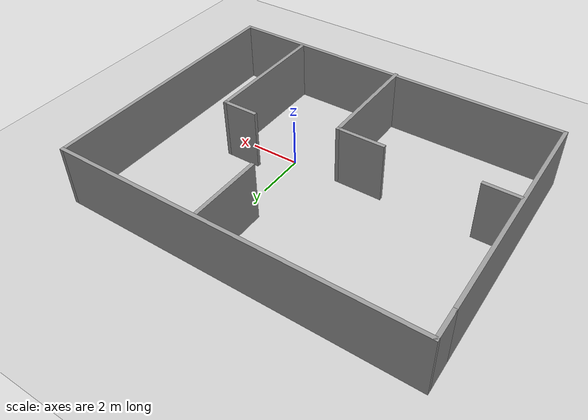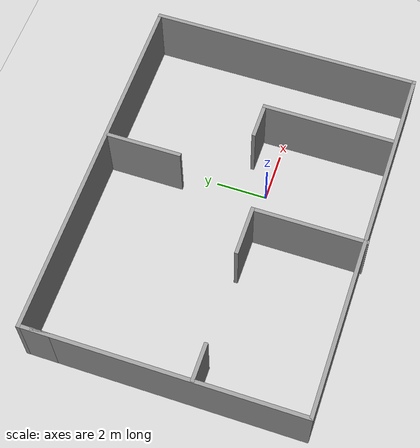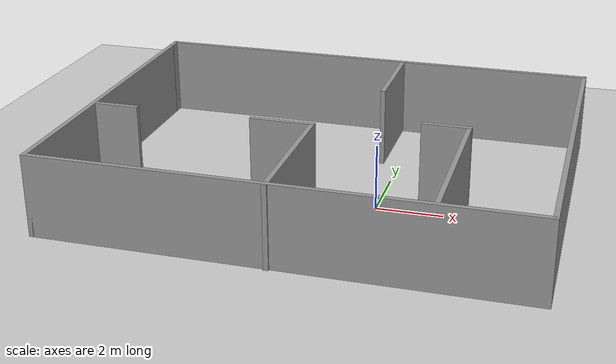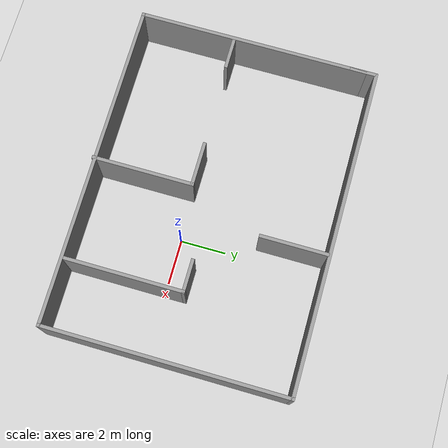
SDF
<sdf version="1.7">
 <world name="default">
  <light name="sun" type="directional">
   <pose>0 0 10 0 -0 0</pose>
   <diffuse>0.8 0.8 0.8 1</diffuse>
   <specular>0.2 0.2 0.2 1</specular>
   <attenuation>
    <range>1000</range>
    <constant>0.9</constant>
    <linear>0.01</linear>
    <quadratic>0.001</quadratic>
   </attenuation>
   <direction>-0.5 0.1 -0.9</direction>
   <spot><inner_angle>0</inner_angle><outer_angle>0</outer_angle><falloff>0</falloff></spot>
  </light>
  <model name="ground_plane">
   <static>1</static>
   <link name="link">
    <collision name="collision">
     <geometry><plane><normal>0 0 1</normal><size>100 100</size></plane></geometry>
     <surface><friction><ode><mu>100</mu><mu2>50</mu2></ode></friction></surface>
    </collision>
    <visual name="visual">
     <cast_shadows>0</cast_shadows>
     <geometry><plane><normal>0 0 1</normal><size>100 100</size></plane></geometry>
     <material>
      <script><uri>file://media/materials/scripts/gazebo.material</uri><name>Gazebo/Grey</name></script>
     </material>
    </visual>
   </link>
  </model>
  <gravity>0 0 -9.8</gravity>
  <magnetic_field>6e-06 2.3e-05 -4.2e-05</magnetic_field>
  <atmosphere type="adiabatic"/>
  <physics type="ode">
   <max_step_size>0.001</max_step_size>
   <real_time_factor>1</real_time_factor>
   <real_time_update_rate>1000</real_time_update_rate>
  </physics>
  <scene><ambient>0.4 0.4 0.4 1</ambient><background>0.7 0.7 0.7 1</background><shadows>1</shadows></scene>
  <audio><device>default</device></audio>
  <spherical_coordinates>
   <surface_model>EARTH_WGS84</surface_model>
   <latitude_deg>0</latitude_deg>
   <longitude_deg>0</longitude_deg>
   <elevation>0</elevation>
   <heading_deg>0</heading_deg>
  </spherical_coordinates>
  <model name="world2">
   <pose>-1.73895 0.954856 0 0 -0 0</pose>
   <link name="Wall_15">
    <collision name="Wall_15_Collision">
     <geometry><box><size>10.25 0.15 2.5</size></box></geometry>
     <pose>0 0 1.25 0 -0 0</pose>
    </collision>
    <visual name="Wall_15_Visual">
     <pose>0 0 1.25 0 -0 0</pose>
     <geometry><box><size>10.25 0.15 2.5</size></box></geometry>
     <material>
      <script><uri>file://media/materials/scripts/gazebo.material</uri><name>Gazebo/Grey</name></script>
      <ambient>1 1 1 1</ambient>
     </material>
     <meta><layer>0</layer></meta>
    </visual>
    <pose>-7.175 -0.218928 0 0 -0 -1.5708</pose>
   </link>
   <link name="Wall_16">
    <collision name="Wall_16_Collision">
     <geometry><box><size>14.5 0.15 2.5</size></box></geometry>
     <pose>0 0 1.25 0 -0 0</pose>
    </collision>
    <visual name="Wall_16_Visual">
     <pose>0 0 1.25 0 -0 0</pose>
     <geometry><box><size>14.5 0.15 2.5</size></box></geometry>
     <material>
      <script><uri>file://media/materials/scripts/gazebo.material</uri><name>Gazebo/Grey</name></script>
      <ambient>1 1 1 1</ambient>
     </material>
     <meta><layer>0</layer></meta>
    </visual>
    <pose>0 -5.26893 0 0 -0 0</pose>
   </link>
   <link name="Wall_17">
    <collision name="Wall_17_Collision">
     <geometry><box><size>10.75 0.15 2.5</size></box></geometry>
     <pose>0 0 1.25 0 -0 0</pose>
    </collision>
    <visual name="Wall_17_Visual">
     <pose>0 0 1.25 0 -0 0</pose>
     <geometry><box><size>10.75 0.15 2.5</size></box></geometry>
     <material>
      <script><uri>file://media/materials/scripts/gazebo.material</uri><name>Gazebo/Grey</name></script>
      <ambient>1 1 1 1</ambient>
     </material>
     <meta><layer>0</layer></meta>
    </visual>
    <pose>7.175 0.031072 0 0 -0 1.5708</pose>
   </link>
   <link name="Wall_18">
    <collision name="Wall_18_Collision">
     <geometry><box><size>14.5 0.15 2.5</size></box></geometry>
     <pose>0 0 1.25 0 -0 0</pose>
    </collision>
    <visual name="Wall_18_Visual">
     <pose>0 0 1.25 0 -0 0</pose>
     <geometry><box><size>14.5 0.15 2.5</size></box></geometry>
     <material>
      <script><uri>file://media/materials/scripts/gazebo.material</uri><name>Gazebo/Grey</name></script>
      <ambient>1 1 1 1</ambient>
     </material>
     <meta><layer>0</layer></meta>
    </visual>
    <pose>0 5.33107 0 0 -0 3.14159</pose>
   </link>
   <link name="Wall_19">
    <collision name="Wall_19_Collision">
     <geometry><box><size>1.25 0.15 2.5</size></box></geometry>
     <pose>0 0 1.25 0 -0 0</pose>
    </collision>
    <visual name="Wall_19_Visual">
     <pose>0 0 1.25 0 -0 0</pose>
     <geometry><box><size>1.25 0.15 2.5</size></box></geometry>
     <material>
      <script><uri>file://media/materials/scripts/gazebo.material</uri><name>Gazebo/Grey</name></script>
      <ambient>1 1 1 1</ambient>
     </material>
     <meta><layer>0</layer></meta>
    </visual>
    <pose>-7.175 4.78107 0 0 -0 -1.5708</pose>
   </link>
   <link name="Wall_21">
    <collision name="Wall_21_Collision">
     <geometry><box><size>1.5 0.15 2.5</size></box></geometry>
     <pose>0 0 1.25 0 -0 0</pose>
    </collision>
    <visual name="Wall_21_Visual">
     <pose>0 0 1.25 0 -0 0</pose>
     <geometry><box><size>1.5 0.15 2.5</size></box></geometry>
     <material>
      <script><uri>file://media/materials/scripts/gazebo.material</uri><name>Gazebo/Grey</name></script>
      <ambient>1 1 1 1</ambient>
     </material>
     <meta><layer>0</layer></meta>
    </visual>
    <pose>-6.46941 -1.07284 0 0 -0 0</pose>
   </link>
   <link name="Wall_23">
    <collision name="Wall_23_Collision">
     <geometry><box><size>2 0.15 2.5</size></box></geometry>
     <pose>0 0 1.25 0 -0 0</pose>
    </collision>
    <visual name="Wall_23_Visual">
     <pose>0 0 1.25 0 -0 0</pose>
     <geometry><box><size>2 0.15 2.5</size></box></geometry>
     <material>
      <script><uri>file://media/materials/scripts/gazebo.material</uri><name>Gazebo/Grey</name></script>
      <ambient>1 1 1 1</ambient>
     </material>
     <meta><layer>0</layer></meta>
    </visual>
    <pose>-1.14143 -0.981072 0 0 -0 0</pose>
   </link>
   <link name="Wall_24">
    <collision name="Wall_24_Collision">
     <geometry><box><size>4.5 0.15 2.5</size></box></geometry>
     <pose>0 0 1.25 0 -0 0</pose>
    </collision>
    <visual name="Wall_24_Visual">
     <pose>0 0 1.25 0 -0 0</pose>
     <geometry><box><size>4.5 0.15 2.5</size></box></geometry>
     <material>
      <script><uri>file://media/materials/scripts/gazebo.material</uri><name>Gazebo/Grey</name></script>
      <ambient>1 1 1 1</ambient>
     </material>
     <meta><layer>0</layer></meta>
    </visual>
    <pose>-0.216432 -3.15607 0 0 -0 -1.5708</pose>
   </link>
   <link name="Wall_26">
    <collision name="Wall_26_Collision">
     <geometry><box><size>3 0.15 2.5</size></box></geometry>
     <pose>0 0 1.25 0 -0 0</pose>
    </collision>
    <visual name="Wall_26_Visual">
     <pose>0 0 1.25 0 -0 0</pose>
     <geometry><box><size>3 0.15 2.5</size></box></geometry>
     <material>
      <script><uri>file://media/materials/scripts/gazebo.material</uri><name>Gazebo/Grey</name></script>
      <ambient>1 1 1 1</ambient>
     </material>
     <meta><layer>0</layer></meta>
    </visual>
    <pose>1.14554 3.80375 0 0 -0 -1.5708</pose>
   </link>
   <link name="Wall_29">
    <collision name="Wall_29_Collision">
     <geometry><box><size>5.25 0.15 2.5</size></box></geometry>
     <pose>0 0 1.25 0 -0 0</pose>
    </collision>
    <visual name="Wall_29_Visual">
     <pose>0 0 1.25 0 -0 0</pose>
     <geometry><box><size>5.25 0.15 2.5</size></box></geometry>
     <material>
      <script><uri>file://media/materials/scripts/gazebo.material</uri><name>Gazebo/Grey</name></script>
      <ambient>1 1 1 1</ambient>
     </material>
     <meta><layer>0</layer></meta>
    </visual>
    <pose>4.26575 -2.59134 0 0 -0 1.5708</pose>
   </link>
   <link name="Wall_30">
    <collision name="Wall_30_Collision">
     <geometry><box><size>1.5 0.15 2.5</size></box></geometry>
     <pose>0 0 1.25 0 -0 0</pose>
    </collision>
    <visual name="Wall_30_Visual">
     <pose>0 0 1.25 0 -0 0</pose>
     <geometry><box><size>1.5 0.15 2.5</size></box></geometry>
     <material>
      <script><uri>file://media/materials/scripts/gazebo.material</uri><name>Gazebo/Grey</name></script>
      <ambient>1 1 1 1</ambient>
     </material>
     <meta><layer>0</layer></meta>
    </visual>
    <pose>3.59075 -0.041343 0 0 -0 3.14159</pose>
   </link>
   <static>1</static>
  </model>
 </world>
</sdf>
